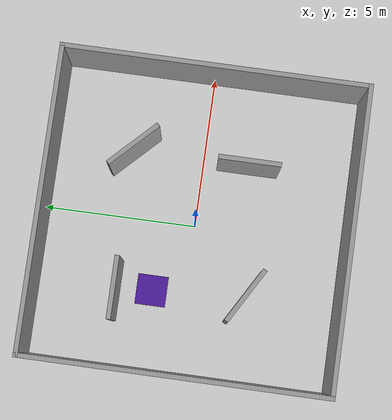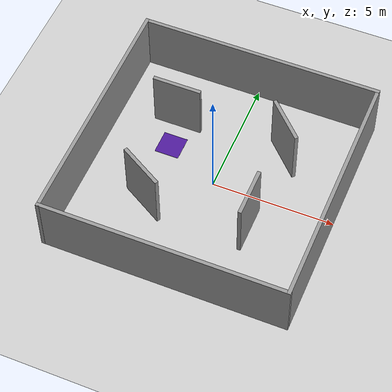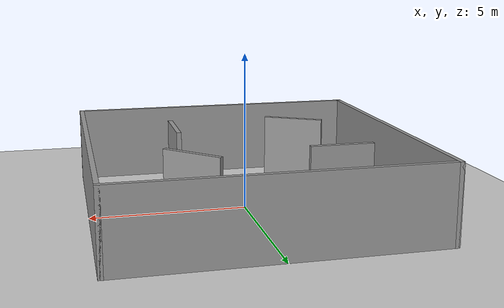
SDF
<sdf version="1.7">
 <world name="default">
  <plugin name="gazebo_ros_state" filename="libgazebo_ros_state.so">
   <ros>
    <namespace>/demo</namespace>
    <argument>--ros-args --remap model_states:=model_states_demo</argument>
    <argument>--ros-args --remap link_states:=link_states_demo</argument>
   </ros>
   <update_rate>1.0</update_rate>
  </plugin>
  <light name="sun" type="directional">
   <pose>0 0 10 0 -0 0</pose>
   <diffuse>0.8 0.8 0.8 1</diffuse>
   <specular>0.2 0.2 0.2 1</specular>
   <attenuation>
    <range>1000</range>
    <constant>0.9</constant>
    <linear>0.01</linear>
    <quadratic>0.001</quadratic>
   </attenuation>
   <direction>-0.5 0.1 -0.9</direction>
   <spot><inner_angle>0</inner_angle><outer_angle>0</outer_angle><falloff>0</falloff></spot>
  </light>
  <model name="ground_plane">
   <static>1</static>
   <link name="link">
    <collision name="collision">
     <geometry><plane><normal>0 0 1</normal><size>100 100</size></plane></geometry>
     <surface>
      <contact><collide_bitmask>65535</collide_bitmask></contact>
      <friction><ode><mu>100</mu><mu2>50</mu2></ode></friction>
     </surface>
    </collision>
    <visual name="visual">
     <cast_shadows>0</cast_shadows>
     <geometry><plane><normal>0 0 1</normal><size>100 100</size></plane></geometry>
     <material>
      <script><uri>file://media/materials/scripts/gazebo.material</uri><name>Gazebo/Grey</name></script>
     </material>
    </visual>
   </link>
  </model>
  <gravity>0 0 -9.8</gravity>
  <magnetic_field>6e-06 2.3e-05 -4.2e-05</magnetic_field>
  <atmosphere type="adiabatic"/>
  <physics type="ode">
   <max_step_size>0.001</max_step_size>
   <real_time_factor>1</real_time_factor>
   <real_time_update_rate>1000</real_time_update_rate>
  </physics>
  <scene><ambient>0.4 0.4 0.4 1</ambient><background>0.7 0.7 0.7 1</background><shadows>1</shadows></scene>
  <spherical_coordinates>
   <surface_model>EARTH_WGS84</surface_model>
   <latitude_deg>0</latitude_deg>
   <longitude_deg>0</longitude_deg>
   <elevation>0</elevation>
   <heading_deg>0</heading_deg>
  </spherical_coordinates>
  <model name="unit_box">
   <pose>-2.27833 1.13611 0.021079 0 -0 3e-06</pose>
   <link name="link">
    <inertial>
     <mass>1</mass>
     <inertia>
      <ixx>0.166667</ixx>
      <ixy>0</ixy>
      <ixz>0</ixz>
      <iyy>0.166667</iyy>
      <iyz>0</iyz>
      <izz>0.166667</izz>
     </inertia>
    </inertial>
    <collision name="collision"><geometry><box><size>1 1 1e-06</size></box></geometry></collision>
    <visual name="visual">
     <geometry><box><size>1 1 0.00999999</size></box></geometry>
     <material>
      <script><name>Gazebo/Indigo</name><uri>file://media/materials/scripts/gazebo.material</uri></script>
     </material>
    </visual>
   </link>
  </model>
  <model name="training_zone7">
   <link name="Wall_20">
    <collision name="Wall_20_Collision">
     <geometry><box><size>10 0.15 2.5</size></box></geometry>
     <pose>0 0 1.25 0 -0 0</pose>
    </collision>
    <visual name="Wall_20_Visual">
     <pose>0 0 1.25 0 -0 0</pose>
     <geometry><box><size>10 0.15 2.5</size></box></geometry>
     <material>
      <script><uri>file://media/materials/scripts/gazebo.material</uri><name>Gazebo/Grey</name></script>
      <ambient>0 0 0 1</ambient>
     </material>
     <meta><layer>0</layer></meta>
    </visual>
    <pose>0 4.925 0 0 -0 0</pose>
   </link>
   <link name="Wall_21">
    <collision name="Wall_21_Collision">
     <geometry><box><size>10 0.15 2.5</size></box></geometry>
     <pose>0 0 1.25 0 -0 0</pose>
    </collision>
    <visual name="Wall_21_Visual">
     <pose>0 0 1.25 0 -0 0</pose>
     <geometry><box><size>10 0.15 2.5</size></box></geometry>
     <material>
      <script><uri>file://media/materials/scripts/gazebo.material</uri><name>Gazebo/Grey</name></script>
      <ambient>0 0 0 1</ambient>
     </material>
     <meta><layer>0</layer></meta>
    </visual>
    <pose>4.925 0 0 0 -0 -1.5708</pose>
   </link>
   <link name="Wall_22">
    <collision name="Wall_22_Collision">
     <geometry><box><size>10 0.15 2.5</size></box></geometry>
     <pose>0 0 1.25 0 -0 0</pose>
    </collision>
    <visual name="Wall_22_Visual">
     <pose>0 0 1.25 0 -0 0</pose>
     <geometry><box><size>10 0.15 2.5</size></box></geometry>
     <material>
      <script><uri>file://media/materials/scripts/gazebo.material</uri><name>Gazebo/Grey</name></script>
      <ambient>0 0 0 1</ambient>
     </material>
     <meta><layer>0</layer></meta>
    </visual>
    <pose>0 -4.925 0 0 -0 3.14159</pose>
   </link>
   <link name="Wall_23">
    <collision name="Wall_23_Collision">
     <geometry><box><size>10 0.15 2.5</size></box></geometry>
     <pose>0 0 1.25 0 -0 0</pose>
    </collision>
    <visual name="Wall_23_Visual">
     <pose>0 0 1.25 0 -0 0</pose>
     <geometry><box><size>10 0.15 2.5</size></box></geometry>
     <material>
      <script><uri>file://media/materials/scripts/gazebo.material</uri><name>Gazebo/Grey</name></script>
      <ambient>0 0 0 1</ambient>
     </material>
     <meta><layer>0</layer></meta>
    </visual>
    <pose>-4.925 0 0 0 -0 1.5708</pose>
   </link>
   <link name="Wall_25">
    <collision name="Wall_25_Collision">
     <geometry><box><size>2 0.15 2.5</size></box></geometry>
     <pose>0 0 1.25 0 -0 0</pose>
    </collision>
    <visual name="Wall_25_Visual">
     <pose>0 0 1.25 0 -0 0</pose>
     <geometry><box><size>2 0.15 2.5</size></box></geometry>
     <material>
      <script><uri>file://media/materials/scripts/gazebo.material</uri><name>Gazebo/Grey</name></script>
      <ambient>0 0 0 1</ambient>
     </material>
     <meta><layer>0</layer></meta>
    </visual>
    <pose>-2.45126 2.24989 0 0 -0 0</pose>
   </link>
   <link name="Wall_27">
    <collision name="Wall_27_Collision">
     <geometry><box><size>2 0.15 2.5</size></box></geometry>
     <pose>0 0 1.25 0 -0 0</pose>
    </collision>
    <visual name="Wall_27_Visual">
     <pose>0 0 1.25 0 -0 0</pose>
     <geometry><box><size>2 0.15 2.5</size></box></geometry>
     <material>
      <script><uri>file://media/materials/scripts/gazebo.material</uri><name>Gazebo/Grey</name></script>
      <ambient>0 0 0 1</ambient>
     </material>
     <meta><layer>0</layer></meta>
    </visual>
    <pose>2.08496 2.25957 0 0 -0 -0.785398</pose>
   </link>
   <link name="Wall_29">
    <collision name="Wall_29_Collision">
     <geometry><box><size>2 0.15 2.5</size></box></geometry>
     <pose>0 0 1.25 0 -0 0</pose>
    </collision>
    <visual name="Wall_29_Visual">
     <pose>0 0 1.25 0 -0 0</pose>
     <geometry><box><size>2 0.15 2.5</size></box></geometry>
     <material>
      <script><uri>file://media/materials/scripts/gazebo.material</uri><name>Gazebo/Grey</name></script>
      <ambient>0 0 0 1</ambient>
     </material>
     <meta><layer>0</layer></meta>
    </visual>
    <pose>-2.1528 -1.87328 0 0 -0 -0.523599</pose>
   </link>
   <link name="Wall_31">
    <collision name="Wall_31_Collision">
     <geometry><box><size>2 0.15 2.5</size></box></geometry>
     <pose>0 0 1.25 0 -0 0</pose>
    </collision>
    <visual name="Wall_31_Visual">
     <pose>0 0 1.25 0 -0 0</pose>
     <geometry><box><size>2 0.15 2.5</size></box></geometry>
     <material>
      <script><uri>file://media/materials/scripts/gazebo.material</uri><name>Gazebo/Grey</name></script>
      <ambient>0 0 0 1</ambient>
     </material>
     <meta><layer>0</layer></meta>
    </visual>
    <pose>2.05441 -1.45078 0 0 -0 -1.5708</pose>
   </link>
   <static>1</static>
  </model>
 </world>
</sdf>
